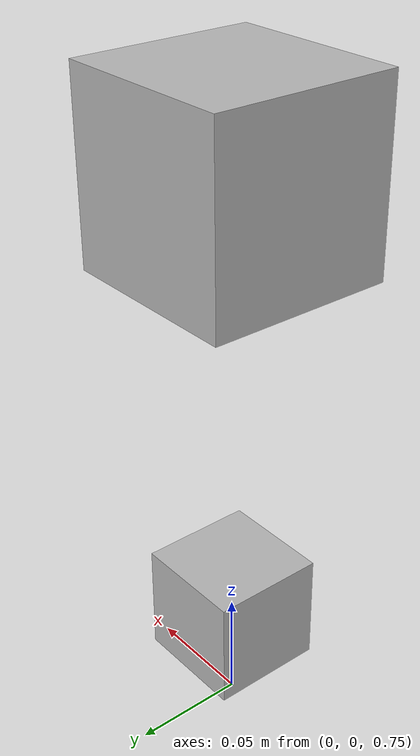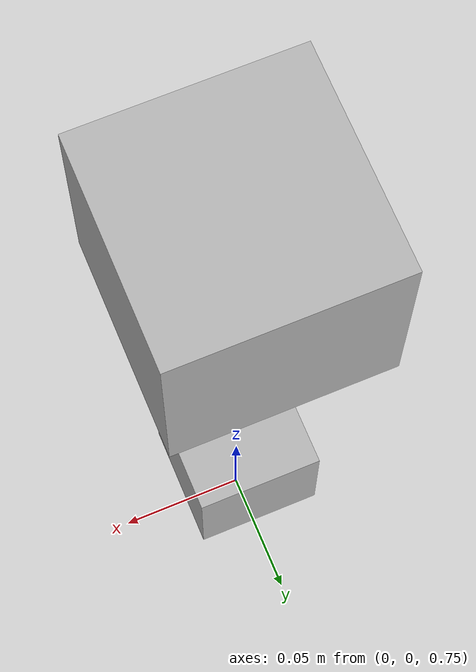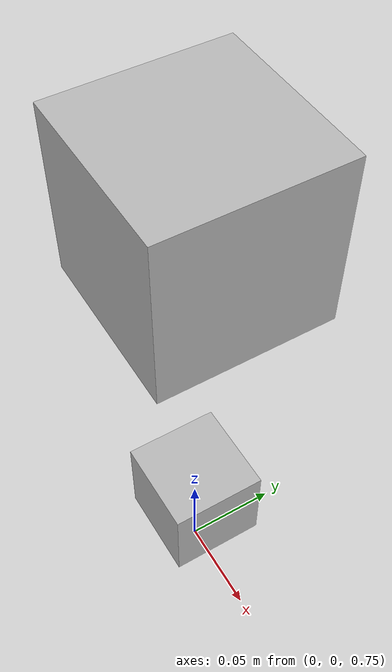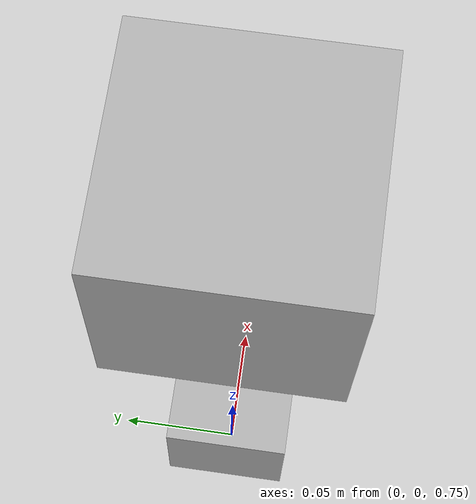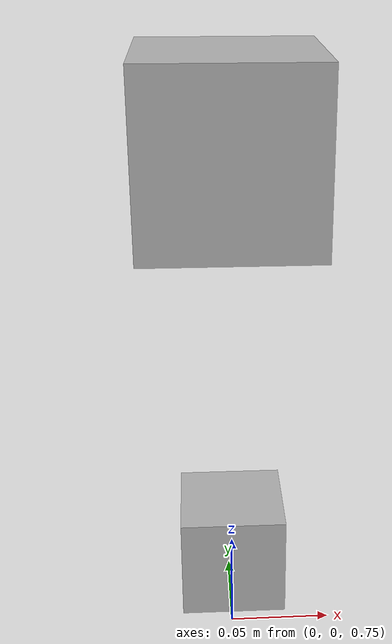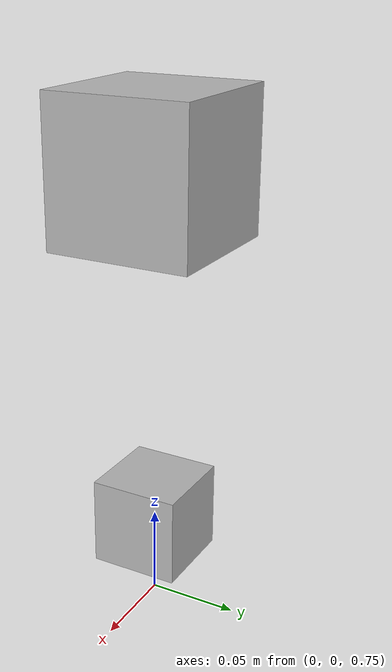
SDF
<?xml version="1.0"?>
<sdf version="1.7">
  <world name="grasp_joint_smoke">
    <gravity>0 0 -9.81</gravity>
    <physics name="ode_physics" type="ode">
      <max_step_size>0.001</max_step_size>
      <real_time_update_rate>1000</real_time_update_rate>
    </physics>
    <include><uri>model://ground_plane</uri></include>

    <model name="test_fixture">
      <static>true</static>
      <pose>0 0 1 0 0 0</pose>
      <link name="palm">
        <visual name="visual">
          <geometry><box><size>0.08 0.08 0.08</size></box></geometry>
        </visual>
      </link>
    </model>

    <model name="test_payload">
      <pose>0 0 0.80 0 0 0</pose>
      <link name="payload_link">
        <inertial>
          <mass>0.08</mass>
          <inertia>
            <ixx>0.0000333</ixx><iyy>0.0000333</iyy><izz>0.0000333</izz>
          </inertia>
        </inertial>
        <collision name="payload_collision">
          <geometry><box><size>0.05 0.05 0.05</size></box></geometry>
        </collision>
        <visual name="visual">
          <geometry><box><size>0.05 0.05 0.05</size></box></geometry>
        </visual>
      </link>
    </model>

    <model name="grasp_joint_smoke_carrier">
      <static>true</static>
      <pose>0 0 -10 0 0 0</pose>
      <link name="carrier_link"/>
      <plugin name="grasp_joint_smoke_plugin" filename="librobot_grasp_joint.so">
        <ros><namespace>/</namespace></ros>
        <robot_model>test_fixture</robot_model>
        <parent_link>palm</parent_link>
        <target_model>test_payload</target_model>
        <target_link>payload_link</target_link>
        <joint_name>smoke_fixed_joint</joint_name>
        <require_bilateral_contact>false</require_bilateral_contact>
        <max_attach_distance>0.30</max_attach_distance>
        <auto_attach>true</auto_attach>
        <attach_service>/grasp/attach</attach_service>
        <detach_service>/grasp/detach</detach_service>
        <status_service>/grasp/status</status_service>
        <state_topic>/grasp/state</state_topic>
      </plugin>
    </model>

    <plugin name="gazebo_ros_state" filename="libgazebo_ros_state.so">
      <ros><namespace>/gazebo</namespace></ros>
      <update_rate>50.0</update_rate>
    </plugin>
  </world>
</sdf>
